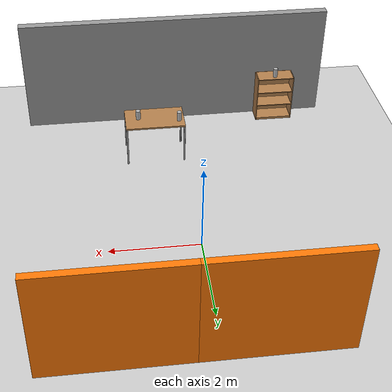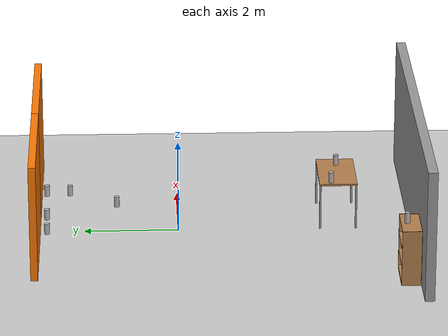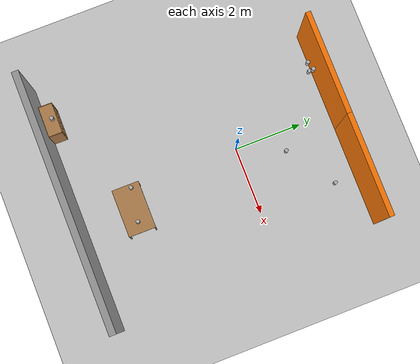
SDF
<sdf version="1.6">
 <world name="default">
  <light name="sun" type="directional">
   <pose>0 0 10 0 -0 0</pose>
   <diffuse>0.8 0.8 0.8 1</diffuse>
   <specular>0.1 0.1 0.1 1</specular>
   <attenuation>
    <range>1000</range>
    <constant>0.9</constant>
    <linear>0.01</linear>
    <quadratic>0.001</quadratic>
   </attenuation>
   <direction>-0.5 0.5 -1</direction>
  </light>
  <model name="ground_plane">
   <static>1</static>
   <link name="link">
    <collision name="collision">
     <geometry><plane><normal>0 0 1</normal><size>100 100</size></plane></geometry>
     <surface><friction><ode><mu>100</mu><mu2>50</mu2></ode></friction></surface>
    </collision>
    <visual name="visual">
     <cast_shadows>0</cast_shadows>
     <geometry><plane><normal>0 0 1</normal><size>100 100</size></plane></geometry>
     <material>
      <script><uri>file://media/materials/scripts/gazebo.material</uri><name>Gazebo/Grey</name></script>
     </material>
    </visual>
   </link>
  </model>
  <gravity>0 0 -9.8</gravity>
  <magnetic_field>6e-06 2.3e-05 -4.2e-05</magnetic_field>
  <atmosphere type="adiabatic"/>
  <physics name="default_physics" default="0" type="ode">
   <max_step_size>0.001</max_step_size>
   <real_time_factor>1</real_time_factor>
   <real_time_update_rate>1000</real_time_update_rate>
  </physics>
  <scene><ambient>0.4 0.4 0.4 1</ambient><background>0.7 0.7 0.7 1</background><shadows>1</shadows></scene>
  <spherical_coordinates>
   <surface_model>EARTH_WGS84</surface_model>
   <latitude_deg>0</latitude_deg>
   <longitude_deg>0</longitude_deg>
   <elevation>0</elevation>
   <heading_deg>0</heading_deg>
  </spherical_coordinates>
  <model name="Orange_Wall">
   <pose>-1 3 0 0 -0 0</pose>
   <link name="Wall_4">
    <collision name="Wall_4_Collision">
     <geometry><box><size>3 0.15 2.5</size></box></geometry>
     <pose>0 0 1.25 0 -0 0</pose>
    </collision>
    <visual name="Wall_4_Visual">
     <pose>0 0 1.25 0 -0 0</pose>
     <geometry><box><size>3 0.15 2.5</size></box></geometry>
     <material>
      <script><uri>file://media/materials/scripts/gazebo.material</uri><name>Gazebo/Grey</name></script>
      <ambient>0.996078 0.47451 0.0196078 1</ambient>
     </material>
    </visual>
   </link>
   <static>1</static>
  </model>
  <model name="Orange_Wall_0">
   <pose>2 3 0 0 -0 0</pose>
   <link name="Wall_4">
    <collision name="Wall_4_Collision">
     <geometry><box><size>3 0.15 2.5</size></box></geometry>
     <pose>0 0 1.25 0 -0 0</pose>
    </collision>
    <visual name="Wall_4_Visual">
     <pose>0 0 1.25 0 -0 0</pose>
     <geometry><box><size>3 0.15 2.5</size></box></geometry>
     <material>
      <script><uri>file://media/materials/scripts/gazebo.material</uri><name>Gazebo/Grey</name></script>
      <ambient>0.996078 0.47451 0.0196078 1</ambient>
     </material>
    </visual>
   </link>
   <static>1</static>
  </model>
  <model name="beer">
   <link name="link">
    <pose>0 0 0.115 0 -0 0</pose>
    <inertial>
     <mass>0.39</mass>
     <inertia><ixx>0.00058</ixx><ixy>0</ixy><ixz>0</ixz><iyy>0.00058</iyy><iyz>0</iyz><izz>0.00019</izz></inertia>
    </inertial>
    <collision name="collision">
     <geometry><cylinder><radius>0.055</radius><length>0.23</length></cylinder></geometry>
    </collision>
    <visual name="visual">
     <geometry><cylinder><radius>0.055</radius><length>0.23</length></cylinder></geometry>
     <material>
      <script>
       <uri>model://beer/materials/scripts</uri>
       <uri>model://beer/materials/textures</uri>
       <name>Beer/Diffuse</name>
      </script>
     </material>
    </visual>
   </link>
   <pose>-1.45486 2.7377 0.919991 6e-06 1.3e-05 1.21664</pose>
  </model>
  <model name="beer_0">
   <link name="link">
    <pose>0 0 0.115 0 -0 0</pose>
    <inertial>
     <mass>0.39</mass>
     <inertia><ixx>0.00058</ixx><ixy>0</ixy><ixz>0</ixz><iyy>0.00058</iyy><iyz>0</iyz><izz>0.00019</izz></inertia>
    </inertial>
    <collision name="collision">
     <geometry><cylinder><radius>0.055</radius><length>0.23</length></cylinder></geometry>
    </collision>
    <visual name="visual">
     <geometry><cylinder><radius>0.055</radius><length>0.23</length></cylinder></geometry>
     <material>
      <script>
       <uri>model://beer/materials/scripts</uri>
       <uri>model://beer/materials/textures</uri>
       <name>Beer/Diffuse</name>
      </script>
     </material>
    </visual>
   </link>
   <pose>-1.27862 2.7502 0.520001 -6e-06 9e-06 -0.002622</pose>
  </model>
  <model name="beer_1">
   <link name="link">
    <pose>0 0 0.115 0 -0 0</pose>
    <inertial>
     <mass>0.39</mass>
     <inertia><ixx>0.00058</ixx><ixy>0</ixy><ixz>0</ixz><iyy>0.00058</iyy><iyz>0</iyz><izz>0.00019</izz></inertia>
    </inertial>
    <collision name="collision">
     <geometry><cylinder><radius>0.055</radius><length>0.23</length></cylinder></geometry>
    </collision>
    <visual name="visual">
     <geometry><cylinder><radius>0.055</radius><length>0.23</length></cylinder></geometry>
     <material>
      <script>
       <uri>model://beer/materials/scripts</uri>
       <uri>model://beer/materials/textures</uri>
       <name>Beer/Diffuse</name>
      </script>
     </material>
    </visual>
   </link>
   <pose>-1.1466 2.73233 1.32 -2.7e-05 -1.9e-05 -1.02951</pose>
  </model>
  <model name="beer_2">
   <link name="link">
    <pose>0 0 0.115 0 -0 0</pose>
    <inertial>
     <mass>0.39</mass>
     <inertia><ixx>0.00058</ixx><ixy>0</ixy><ixz>0</ixz><iyy>0.00058</iyy><iyz>0</iyz><izz>0.00019</izz></inertia>
    </inertial>
    <collision name="collision">
     <geometry><cylinder><radius>0.055</radius><length>0.23</length></cylinder></geometry>
    </collision>
    <visual name="visual">
     <geometry><cylinder><radius>0.055</radius><length>0.23</length></cylinder></geometry>
     <material>
      <script>
       <uri>model://beer/materials/scripts</uri>
       <uri>model://beer/materials/textures</uri>
       <name>Beer/Diffuse</name>
      </script>
     </material>
    </visual>
   </link>
   <pose>0.619002 1.30238 0.299992 -2.2e-05 -2e-05 -0.003295</pose>
  </model>
  <model name="beer_3">
   <link name="link">
    <pose>0 0 0.115 0 -0 0</pose>
    <inertial>
     <mass>0.39</mass>
     <inertia><ixx>0.00058</ixx><ixy>0</ixy><ixz>0</ixz><iyy>0.00058</iyy><iyz>0</iyz><izz>0.00019</izz></inertia>
    </inertial>
    <collision name="collision">
     <geometry><cylinder><radius>0.055</radius><length>0.23</length></cylinder></geometry>
    </collision>
    <visual name="visual">
     <geometry><cylinder><radius>0.055</radius><length>0.23</length></cylinder></geometry>
     <material>
      <script>
       <uri>model://beer/materials/scripts</uri>
       <uri>model://beer/materials/textures</uri>
       <name>Beer/Diffuse</name>
      </script>
     </material>
    </visual>
   </link>
   <pose>1.97544 2.32413 -2e-06 0 0 -2.1e-05</pose>
  </model>
  <model name="grey_wall">
   <static>1</static>
   <link name="link">
    <pose>0 0 1.4 0 -0 0</pose>
    <collision name="collision"><geometry><box><size>7.5 0.2 2.8</size></box></geometry></collision>
    <visual name="visual">
     <cast_shadows>0</cast_shadows>
     <geometry><box><size>7.5 0.2 2.8</size></box></geometry>
     <material>
      <script>
       <uri>model://grey_wall/materials/scripts</uri>
       <uri>model://grey_wall/materials/textures</uri>
       <name>vrc/grey_wall</name>
      </script>
     </material>
    </visual>
   </link>
   <pose>0 -5 0 0 -0 0</pose>
  </model>
  <model name="table">
   <static>0</static>
   <link name="link">
    <collision name="surface">
     <pose>0 0 1 0 -0 0</pose>
     <geometry><box><size>1.5 0.8 0.03</size></box></geometry>
     <surface><friction><ode><mu>0.6</mu><mu2>0.6</mu2></ode></friction></surface>
    </collision>
    <visual name="visual1">
     <pose>0 0 1 0 -0 0</pose>
     <geometry><box><size>1.4 0.8 0.04</size></box></geometry>
     <material>
      <script><uri>file://media/materials/scripts/gazebo.material</uri><name>Gazebo/Wood</name></script>
     </material>
    </visual>
    <collision name="front_left_leg">
     <pose>0.68 0.38 0.5 0 -0 0</pose>
     <geometry><cylinder><radius>0.02</radius><length>1</length></cylinder></geometry>
    </collision>
    <visual name="front_left_leg">
     <pose>0.68 0.38 0.5 0 -0 0</pose>
     <geometry><cylinder><radius>0.02</radius><length>1</length></cylinder></geometry>
     <material>
      <script><uri>file://media/materials/scripts/gazebo.material</uri><name>Gazebo/Grey</name></script>
     </material>
    </visual>
    <collision name="front_right_leg">
     <pose>0.68 -0.38 0.5 0 -0 0</pose>
     <geometry><cylinder><radius>0.02</radius><length>1</length></cylinder></geometry>
    </collision>
    <visual name="front_right_leg">
     <pose>0.68 -0.38 0.5 0 -0 0</pose>
     <geometry><cylinder><radius>0.02</radius><length>1</length></cylinder></geometry>
     <material>
      <script><uri>file://media/materials/scripts/gazebo.material</uri><name>Gazebo/Grey</name></script>
     </material>
    </visual>
    <collision name="back_right_leg">
     <pose>-0.68 -0.38 0.5 0 -0 0</pose>
     <geometry><cylinder><radius>0.02</radius><length>1</length></cylinder></geometry>
    </collision>
    <visual name="back_right_leg">
     <pose>-0.68 -0.38 0.5 0 -0 0</pose>
     <geometry><cylinder><radius>0.02</radius><length>1</length></cylinder></geometry>
     <material>
      <script><uri>file://media/materials/scripts/gazebo.material</uri><name>Gazebo/Grey</name></script>
     </material>
    </visual>
    <collision name="back_left_leg">
     <pose>-0.68 0.38 0.5 0 -0 0</pose>
     <geometry><cylinder><radius>0.02</radius><length>1</length></cylinder></geometry>
    </collision>
    <visual name="back_left_leg">
     <pose>-0.68 0.38 0.5 0 -0 0</pose>
     <geometry><cylinder><radius>0.02</radius><length>1</length></cylinder></geometry>
     <material>
      <script><uri>file://media/materials/scripts/gazebo.material</uri><name>Gazebo/Grey</name></script>
     </material>
    </visual>
    <inertial>
     <inertia><ixx>1</ixx><ixy>0</ixy><ixz>0</ixz><iyy>1</iyy><iyz>0</iyz><izz>1</izz></inertia>
     <mass>1</mass>
    </inertial>
   </link>
   <pose>0.672465 -3.39199 -3e-05 -1e-06 -1.1e-05 -4.1e-05</pose>
  </model>
  <model name="beer_4">
   <link name="link">
    <pose>0 0 0.115 0 -0 0</pose>
    <inertial>
     <mass>0.39</mass>
     <inertia><ixx>0.00058</ixx><ixy>0</ixy><ixz>0</ixz><iyy>0.00058</iyy><iyz>0</iyz><izz>0.00019</izz></inertia>
    </inertial>
    <collision name="collision">
     <geometry><cylinder><radius>0.055</radius><length>0.23</length></cylinder></geometry>
    </collision>
    <visual name="visual">
     <geometry><cylinder><radius>0.055</radius><length>0.23</length></cylinder></geometry>
     <material>
      <script>
       <uri>model://beer/materials/scripts</uri>
       <uri>model://beer/materials/textures</uri>
       <name>Beer/Diffuse</name>
      </script>
     </material>
    </visual>
   </link>
   <pose>1.05937 -3.40227 1.015 -6e-06 0.000149 -0.001915</pose>
  </model>
  <model name="beer_5">
   <link name="link">
    <pose>0 0 0.115 0 -0 0</pose>
    <inertial>
     <mass>0.39</mass>
     <inertia><ixx>0.00058</ixx><ixy>0</ixy><ixz>0</ixz><iyy>0.00058</iyy><iyz>0</iyz><izz>0.00019</izz></inertia>
    </inertial>
    <collision name="collision">
     <geometry><cylinder><radius>0.055</radius><length>0.23</length></cylinder></geometry>
    </collision>
    <visual name="visual">
     <geometry><cylinder><radius>0.055</radius><length>0.23</length></cylinder></geometry>
     <material>
      <script>
       <uri>model://beer/materials/scripts</uri>
       <uri>model://beer/materials/textures</uri>
       <name>Beer/Diffuse</name>
      </script>
     </material>
    </visual>
   </link>
   <pose>0.096066 -3.24299 1.01496 2e-06 -0.000135 0.020162</pose>
  </model>
  <model name="bookshelf">
   <static>1</static>
   <link name="link">
    <inertial><mass>1</mass></inertial>
    <collision name="back">
     <pose>0 0.005 0.6 0 -0 0</pose>
     <geometry><box><size>0.9 0.01 1.2</size></box></geometry>
    </collision>
    <visual name="visual1">
     <pose>0 0.005 0.6 0 -0 0</pose>
     <geometry><box><size>0.9 0.01 1.2</size></box></geometry>
     <material>
      <script><uri>file://media/materials/scripts/gazebo.material</uri><name>Gazebo/Wood</name></script>
     </material>
    </visual>
    <collision name="left_side">
     <pose>0.45 -0.195 0.6 0 -0 0</pose>
     <geometry><box><size>0.02 0.4 1.2</size></box></geometry>
    </collision>
    <visual name="visual2">
     <pose>0.45 -0.195 0.6 0 -0 0</pose>
     <geometry><box><size>0.02 0.4 1.2</size></box></geometry>
     <material>
      <script><uri>file://media/materials/scripts/gazebo.material</uri><name>Gazebo/Wood</name></script>
     </material>
    </visual>
    <collision name="right_side">
     <pose>-0.45 -0.195 0.6 0 -0 0</pose>
     <geometry><box><size>0.02 0.4 1.2</size></box></geometry>
    </collision>
    <visual name="visual3">
     <pose>-0.45 -0.195 0.6 0 -0 0</pose>
     <geometry><box><size>0.02 0.4 1.2</size></box></geometry>
     <material>
      <script><uri>file://media/materials/scripts/gazebo.material</uri><name>Gazebo/Wood</name></script>
     </material>
    </visual>
    <collision name="bottom">
     <pose>0 -0.195 0.03 0 -0 0</pose>
     <geometry><box><size>0.88 0.4 0.06</size></box></geometry>
    </collision>
    <visual name="visual4">
     <pose>0 -0.195 0.03 0 -0 0</pose>
     <geometry><box><size>0.88 0.4 0.06</size></box></geometry>
     <material>
      <script><uri>file://media/materials/scripts/gazebo.material</uri><name>Gazebo/Wood</name></script>
     </material>
    </visual>
    <collision name="top">
     <pose>0 -0.195 1.19 0 -0 0</pose>
     <geometry><box><size>0.88 0.4 0.02</size></box></geometry>
    </collision>
    <visual name="visual5">
     <pose>0 -0.195 1.19 0 -0 0</pose>
     <geometry><box><size>0.88 0.4 0.02</size></box></geometry>
     <material>
      <script><uri>file://media/materials/scripts/gazebo.material</uri><name>Gazebo/Wood</name></script>
     </material>
    </visual>
    <collision name="low_shelf">
     <pose>0 -0.195 0.43 0 -0 0</pose>
     <geometry><box><size>0.88 0.4 0.02</size></box></geometry>
    </collision>
    <visual name="visual6">
     <pose>0 -0.195 0.43 0 -0 0</pose>
     <geometry><box><size>0.88 0.4 0.02</size></box></geometry>
     <material>
      <script><uri>file://media/materials/scripts/gazebo.material</uri><name>Gazebo/Wood</name></script>
     </material>
    </visual>
    <collision name="high_shelf">
     <pose>0 -0.195 0.8 0 -0 0</pose>
     <geometry><box><size>0.88 0.4 0.02</size></box></geometry>
    </collision>
    <visual name="visual7">
     <pose>0 -0.195 0.8 0 -0 0</pose>
     <geometry><box><size>0.88 0.4 0.02</size></box></geometry>
     <material>
      <script><uri>file://media/materials/scripts/gazebo.material</uri><name>Gazebo/Wood</name></script>
     </material>
    </visual>
   </link>
   <pose>-2.52456 -4.88948 0 0 -0 3.1334</pose>
  </model>
  <model name="beer_6">
   <link name="link">
    <pose>0 0 0.115 0 -0 0</pose>
    <inertial>
     <mass>0.39</mass>
     <inertia><ixx>0.00058</ixx><ixy>0</ixy><ixz>0</ixz><iyy>0.00058</iyy><iyz>0</iyz><izz>0.00019</izz></inertia>
    </inertial>
    <collision name="collision">
     <geometry><cylinder><radius>0.055</radius><length>0.23</length></cylinder></geometry>
    </collision>
    <visual name="visual">
     <geometry><cylinder><radius>0.055</radius><length>0.23</length></cylinder></geometry>
     <material>
      <script>
       <uri>model://beer/materials/scripts</uri>
       <uri>model://beer/materials/textures</uri>
       <name>Beer/Diffuse</name>
      </script>
     </material>
    </visual>
   </link>
   <pose>-2.51652 -4.62523 1.2 -1.7e-05 -2e-06 7.1e-05</pose>
  </model>
 </world>
</sdf>
